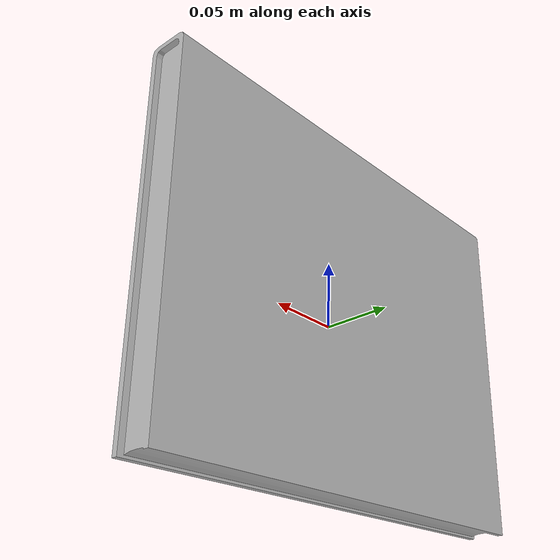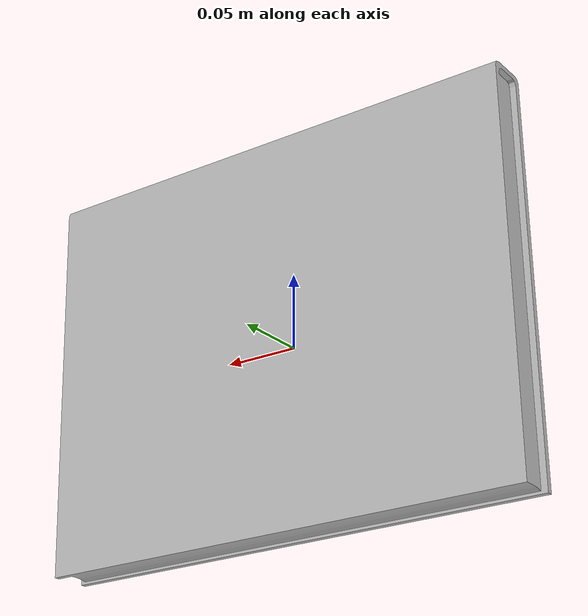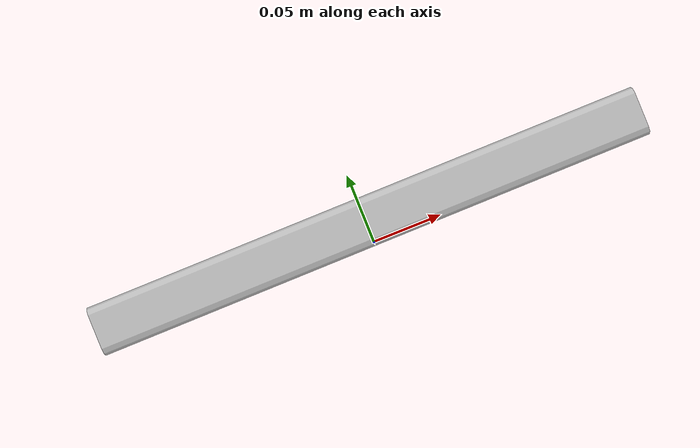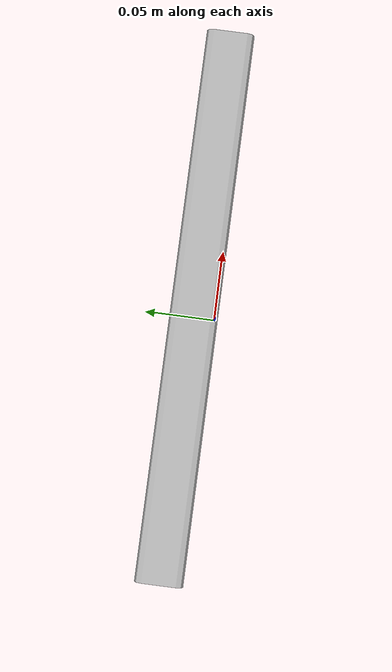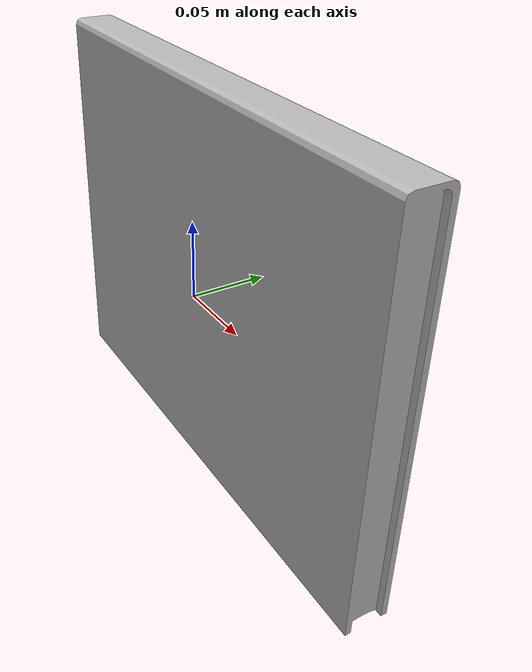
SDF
<?xml version="1.0" ?>
<sdf version="1.4">
  <model name="shelf3_artbook_surrealism">
    <link name="body">
      <pose>0 0 0 0 0 0</pose>
      <inertial>
        <pose>   0.000064   0.015000   0.005676 0 0 0</pose>
        <mass>0.5</mass>
        <inertia>
          <ixx>0.01</ixx>
          <ixy>0</ixy>
          <ixz>0</ixz>
          <iyy>0.01</iyy>
          <iyz>0</iyz>
          <izz>0.01</izz>
        </inertia>
      </inertial>
      <collision name="collision">
        <pose>   0.000064   0.015000   0.005676 0 0 0</pose>
        <geometry>
          <box><size>0.337470 0.028860 0.264772</size></box>
        </geometry>
      </collision>
      <visual name="visual">
        <geometry>
          <mesh>
            <uri>model://bookshelf/shelf3_items/artbook_surrealism/artbook_surrealism.dae</uri>
          </mesh>
        </geometry>
      </visual>
    </link>
  </model>
</sdf>
